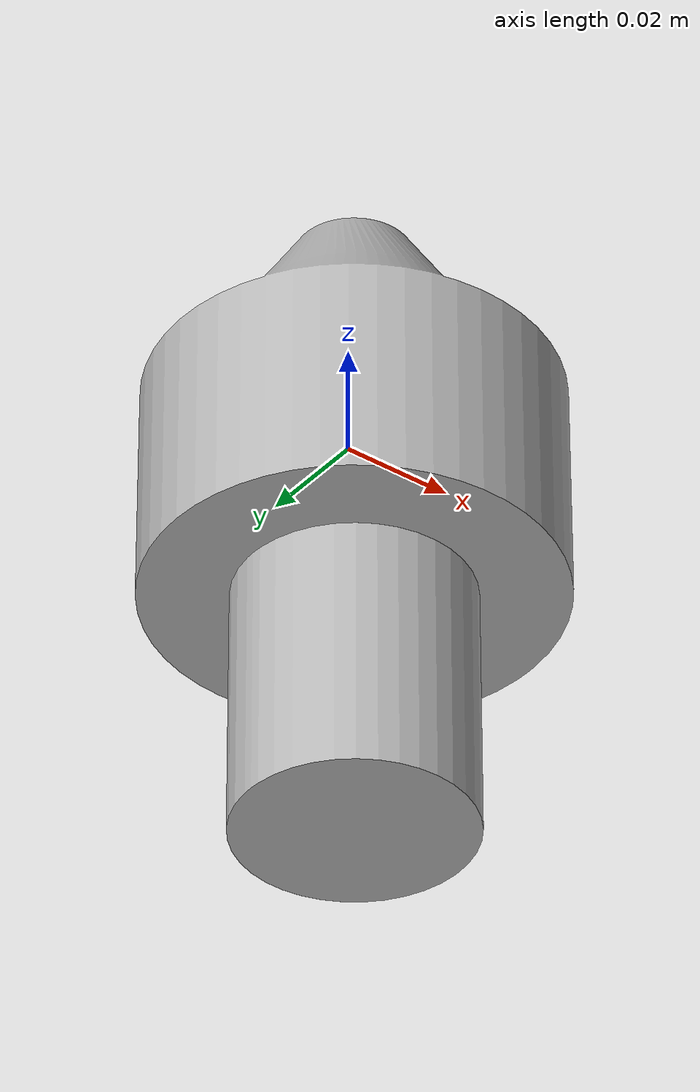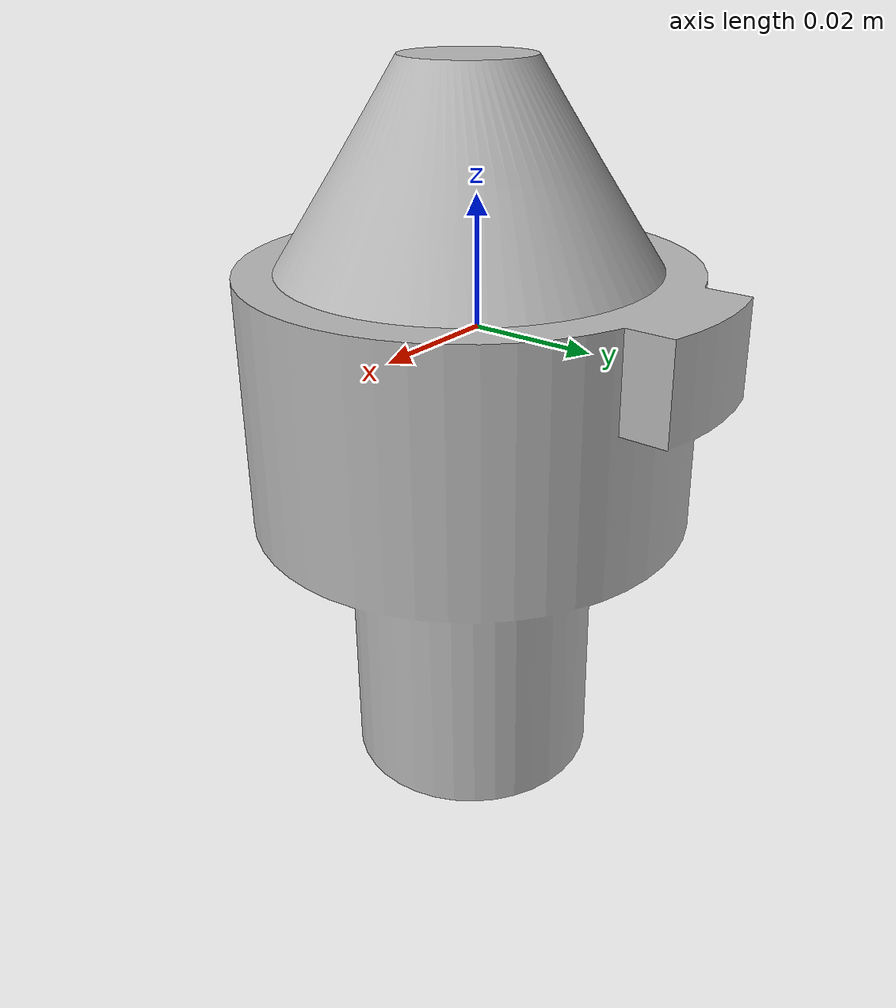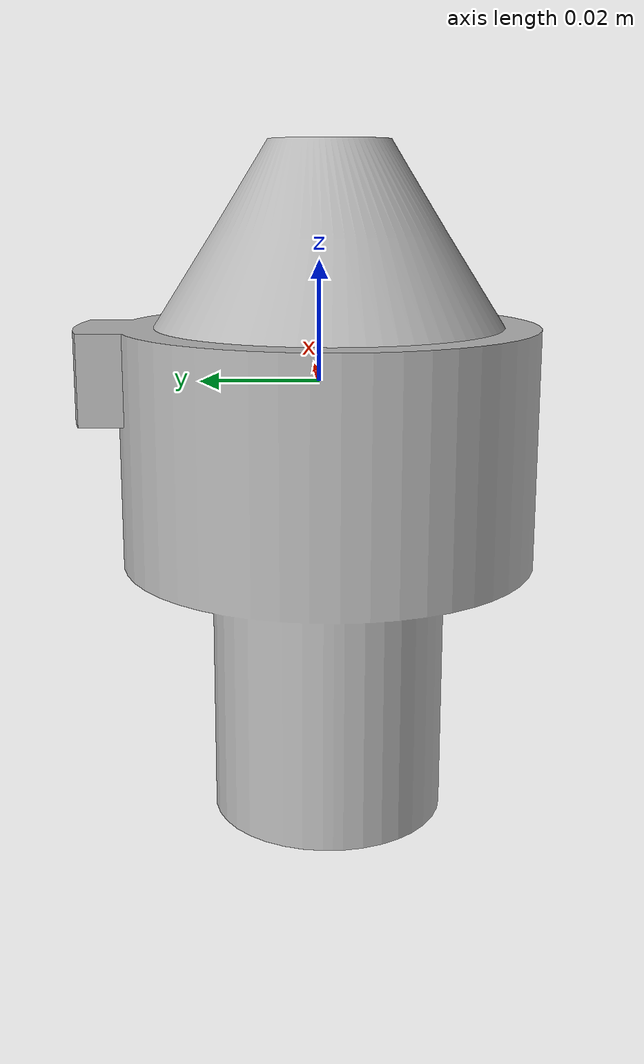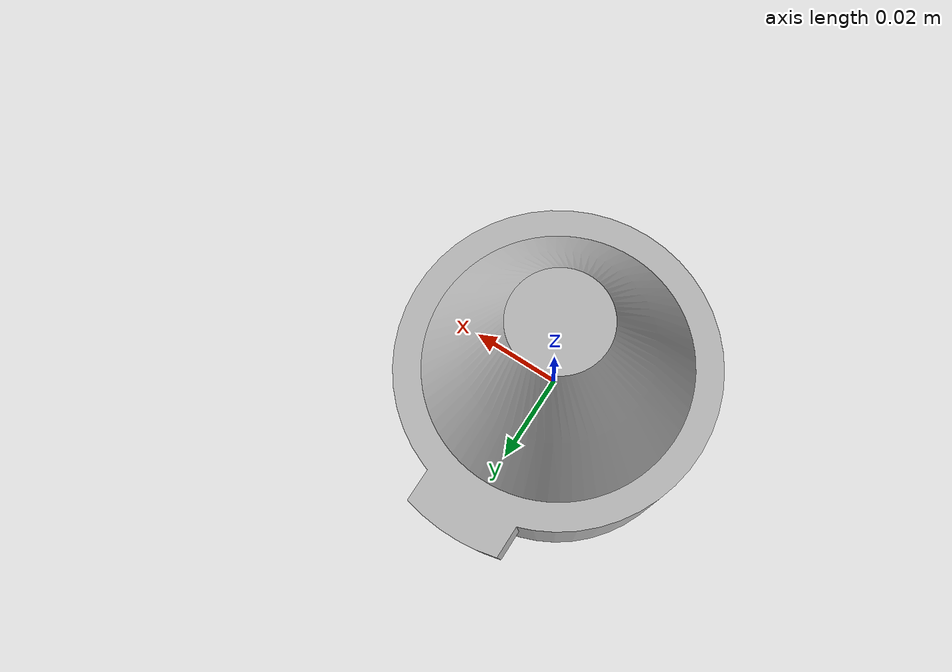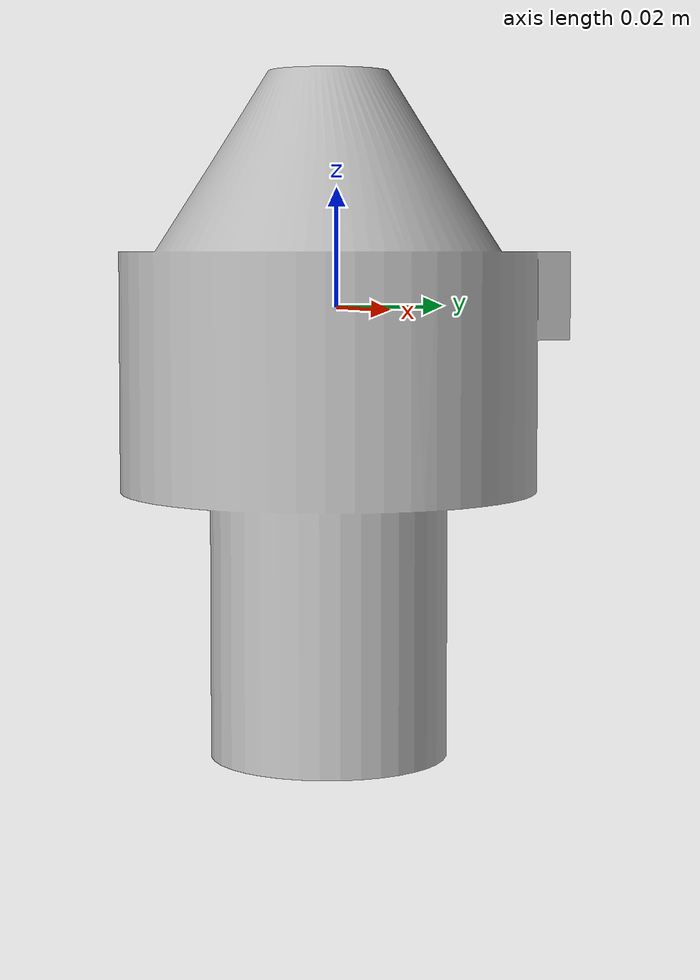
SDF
<?xml version="1.0"?>
<sdf version="1.6">
  <model name="other_side">
    <static>false</static>

    <link name="link">
      <gravity>false</gravity>
      <self_collide>false</self_collide>
      <kinematic>false</kinematic>

      <inertial>
        <mass>10.0</mass>
        <inertia>
          <ixx>0.009881</ixx>
          <iyy>0.008860205</iyy>
          <izz>0.004738256</izz>
          <ixy>0</ixy><ixz>0</ixz><iyz>0.0006</iyz>
        </inertia>
      </inertial>

      <!-- VISUAL: DAE in meters -->
      <visual name="visual">
        <geometry>
          <mesh>
            <uri>model://other_side/meshes/other_side.dae</uri>
            <scale>1 1 1</scale>
          </mesh>
        </geometry>
        <cast_shadows>false</cast_shadows>
      </visual>

      <!-- COLLISION using full mesh -->
        <collision name="collision_full">
          <geometry>
                <mesh>
                 <uri>model://other_side/meshes/other_side.dae</uri>
                 <scale>1 1 1</scale>
                </mesh>
          </geometry>

        <!-- ODE variables, this uses the default, can modify if needed :P -->
          <surface>
             <contact><ode/></contact>
             <friction><ode/></friction>
          </surface>
        </collision>
    </link>
  </model>
</sdf>
